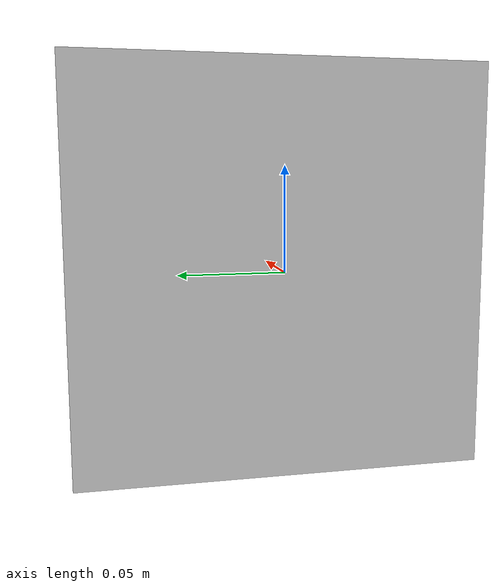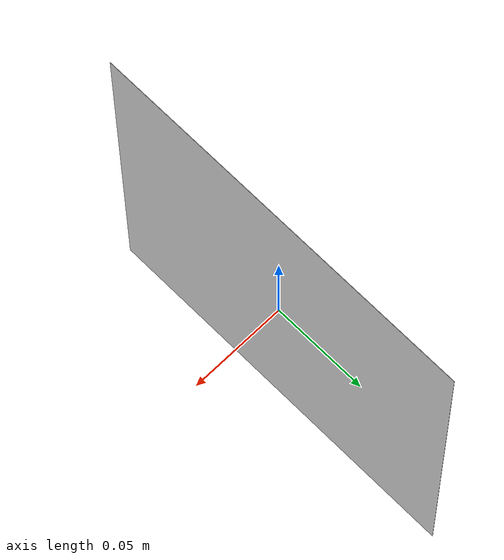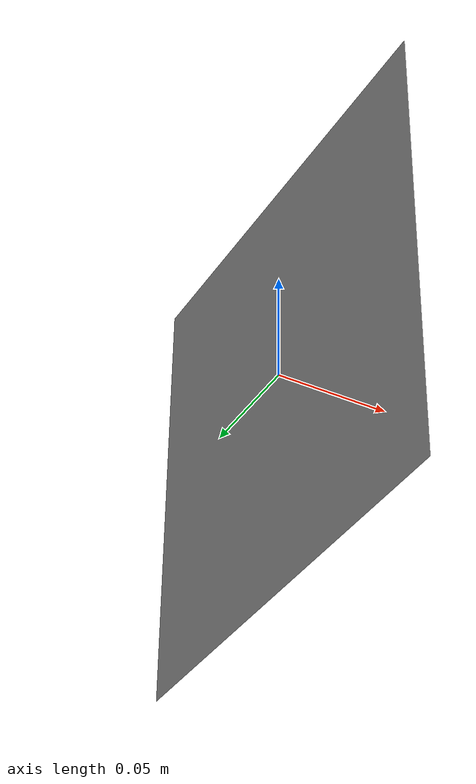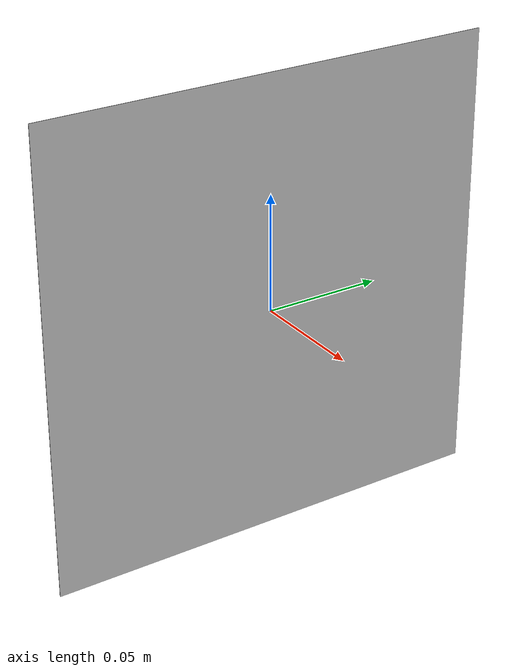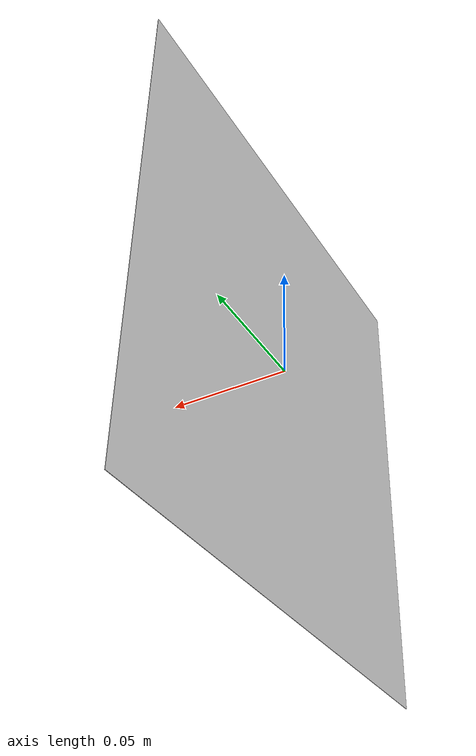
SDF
<?xml version="1.0" ?><sdf version="1.6">
  <model name="Marker10">
    <static>true</static>
    <link name="link">
      <visual name="visual">
        <geometry>
          <mesh>
            <uri>model://marker10/meshes/Marker10.dae</uri>
          <scale>0.199 0.199 0.199</scale></mesh>
        </geometry>
      </visual>
    </link>
  </model>
</sdf>
